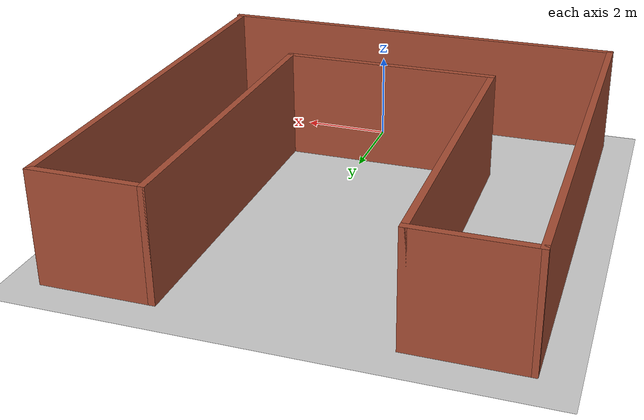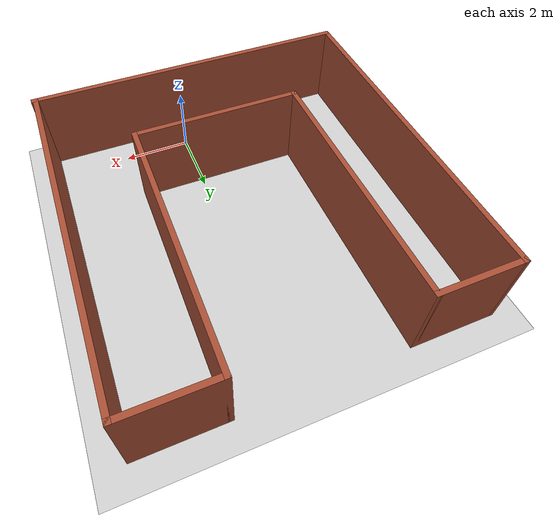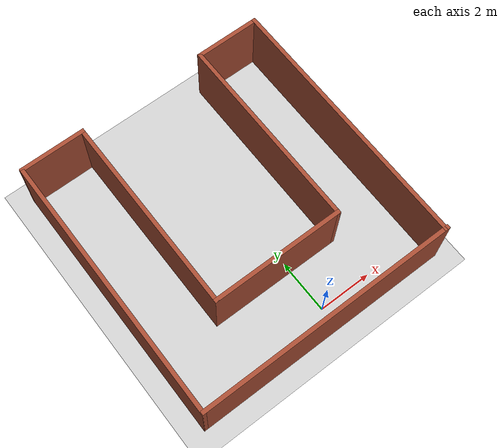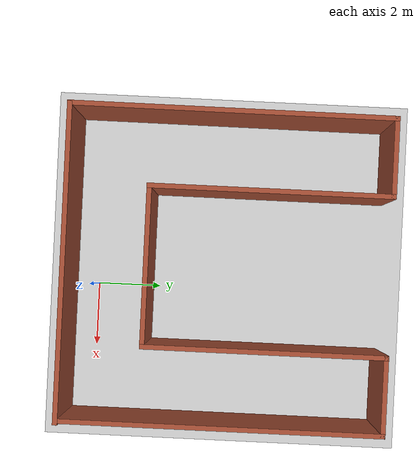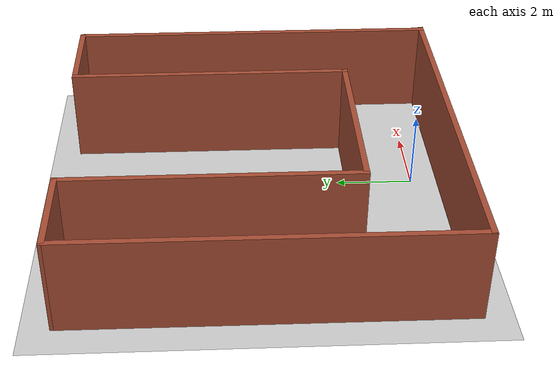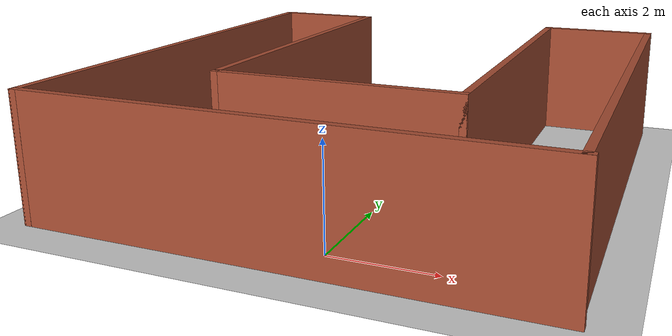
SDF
<sdf version="1.6">
 <world name="default">
  <light name="sun" type="directional">
   <pose>0 0 10 0 -0 0</pose>
   <diffuse>0.8 0.8 0.8 1</diffuse>
   <specular>0.1 0.1 0.1 1</specular>
   <attenuation>
    <range>1000</range>
    <constant>0.9</constant>
    <linear>0.01</linear>
    <quadratic>0.001</quadratic>
   </attenuation>
   <direction>-0.5 0.5 -1</direction>
  </light>
  <model name="ground_plane">
   <static>1</static>
   <link name="link">
    <collision name="collision">
     <geometry><plane><normal>0 0 1</normal><size>100 100</size></plane></geometry>
     <surface><friction><ode><mu>100</mu><mu2>50</mu2></ode></friction></surface>
    </collision>
    <visual name="visual">
     <cast_shadows>0</cast_shadows>
     <geometry><plane><normal>0 0 1</normal><size>100 100</size></plane></geometry>
     <material>
      <script><uri>file://media/materials/scripts/gazebo.material</uri><name>Gazebo/Grey</name></script>
     </material>
    </visual>
   </link>
  </model>
  <gravity>0 0 -9.8</gravity>
  <magnetic_field>6e-06 2.3e-05 -4.2e-05</magnetic_field>
  <atmosphere type="adiabatic"/>
  <physics name="default_physics" default="0" type="ode">
   <max_step_size>0.001</max_step_size>
   <real_time_factor>1</real_time_factor>
   <real_time_update_rate>1000</real_time_update_rate>
  </physics>
  <scene><ambient>0.4 0.4 0.4 1</ambient><background>0.7 0.7 0.7 1</background><shadows>1</shadows></scene>
  <spherical_coordinates>
   <surface_model>EARTH_WGS84</surface_model>
   <latitude_deg>0</latitude_deg>
   <longitude_deg>0</longitude_deg>
   <elevation>0</elevation>
   <heading_deg>0</heading_deg>
  </spherical_coordinates>
  <model name="Untitled">
   <pose>-0.610133 4.145 0 0 -0 0</pose>
   <link name="Wall_0">
    <collision name="Wall_0_Collision">
     <geometry><box><size>9.75 0.15 2.5</size></box></geometry>
     <pose>0 0 1.25 0 -0 0</pose>
    </collision>
    <visual name="Wall_0_Visual">
     <pose>0 0 1.25 0 -0 0</pose>
     <geometry><box><size>9.75 0.15 2.5</size></box></geometry>
     <material>
      <script><uri>file://media/materials/scripts/gazebo.material</uri><name>Gazebo/Bricks</name></script>
      <ambient>1 1 1 1</ambient>
     </material>
    </visual>
    <pose>0.010133 -4.925 0 0 -0 3.14159</pose>
   </link>
   <link name="Wall_10">
    <collision name="Wall_10_Collision">
     <geometry><box><size>7.5 0.15 2.5</size></box></geometry>
     <pose>0 0 1.25 0 -0 0</pose>
    </collision>
    <visual name="Wall_10_Visual">
     <pose>0 0 1.25 0 -0 0</pose>
     <geometry><box><size>7.5 0.15 2.5</size></box></geometry>
     <material>
      <script><uri>file://media/materials/scripts/gazebo.material</uri><name>Gazebo/Bricks</name></script>
      <ambient>1 1 1 1</ambient>
     </material>
    </visual>
    <pose>2.41013 1.25 0 0 -0 1.5708</pose>
   </link>
   <link name="Wall_12">
    <collision name="Wall_12_Collision">
     <geometry><box><size>2.5 0.15 2.5</size></box></geometry>
     <pose>0 0 1.25 0 -0 0</pose>
    </collision>
    <visual name="Wall_12_Visual">
     <pose>0 0 1.25 0 -0 0</pose>
     <geometry><box><size>2.5 0.15 2.5</size></box></geometry>
     <material>
      <script><uri>file://media/materials/scripts/gazebo.material</uri><name>Gazebo/Bricks</name></script>
      <ambient>1 1 1 1</ambient>
     </material>
    </visual>
    <pose>3.58513 4.925 0 0 -0 0</pose>
   </link>
   <link name="Wall_14">
    <collision name="Wall_14_Collision">
     <geometry><box><size>10 0.15 2.5</size></box></geometry>
     <pose>0 0 1.25 0 -0 0</pose>
    </collision>
    <visual name="Wall_14_Visual">
     <pose>0 0 1.25 0 -0 0</pose>
     <geometry><box><size>10 0.15 2.5</size></box></geometry>
     <material>
      <script><uri>file://media/materials/scripts/gazebo.material</uri><name>Gazebo/Bricks</name></script>
      <ambient>1 1 1 1</ambient>
     </material>
    </visual>
    <pose>4.76013 0 0 0 0 -1.5708</pose>
   </link>
   <link name="Wall_2">
    <collision name="Wall_2_Collision">
     <geometry><box><size>10.0002 0.15 2.5</size></box></geometry>
     <pose>0 0 1.25 0 -0 0</pose>
    </collision>
    <visual name="Wall_2_Visual">
     <pose>0 0 1.25 0 -0 0</pose>
     <geometry><box><size>10.0002 0.15 2.5</size></box></geometry>
     <material>
      <script><uri>file://media/materials/scripts/gazebo.material</uri><name>Gazebo/Bricks</name></script>
      <ambient>1 1 1 1</ambient>
     </material>
    </visual>
    <pose>-4.79992 0 0 0 -0 1.56875</pose>
   </link>
   <link name="Wall_4">
    <collision name="Wall_4_Collision">
     <geometry><box><size>2.5 0.15 2.5</size></box></geometry>
     <pose>0 0 1.25 0 -0 0</pose>
    </collision>
    <visual name="Wall_4_Visual">
     <pose>0 0 1.25 0 -0 0</pose>
     <geometry><box><size>2.5 0.15 2.5</size></box></geometry>
     <material>
      <script><uri>file://media/materials/scripts/gazebo.material</uri><name>Gazebo/Bricks</name></script>
      <ambient>1 1 1 1</ambient>
     </material>
    </visual>
    <pose>-3.61487 4.925 0 0 -0 0</pose>
   </link>
   <link name="Wall_6">
    <collision name="Wall_6_Collision">
     <geometry><box><size>7.5 0.15 2.5</size></box></geometry>
     <pose>0 0 1.25 0 -0 0</pose>
    </collision>
    <visual name="Wall_6_Visual">
     <pose>0 0 1.25 0 -0 0</pose>
     <geometry><box><size>7.5 0.15 2.5</size></box></geometry>
     <material>
      <script><uri>file://media/materials/scripts/gazebo.material</uri><name>Gazebo/Bricks</name></script>
      <ambient>1 1 1 1</ambient>
     </material>
    </visual>
    <pose>-2.43987 1.25 0 0 0 -1.5708</pose>
   </link>
   <link name="Wall_8">
    <collision name="Wall_8_Collision">
     <geometry><box><size>5 0.15 2.5</size></box></geometry>
     <pose>0 0 1.25 0 -0 0</pose>
    </collision>
    <visual name="Wall_8_Visual">
     <pose>0 0 1.25 0 -0 0</pose>
     <geometry><box><size>5 0.15 2.5</size></box></geometry>
     <material>
      <script><uri>file://media/materials/scripts/gazebo.material</uri><name>Gazebo/Bricks</name></script>
      <ambient>1 1 1 1</ambient>
     </material>
    </visual>
    <pose>-0.014867 -2.425 0 0 -0 0</pose>
   </link>
   <static>1</static>
  </model>
 </world>
</sdf>
